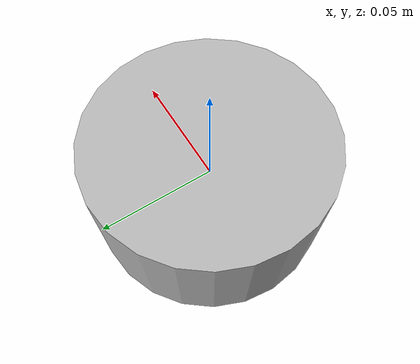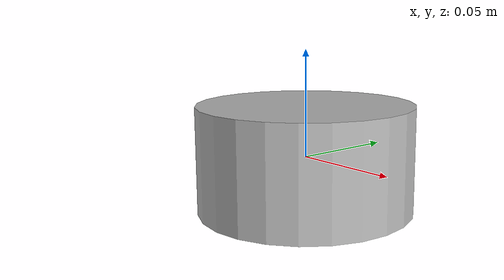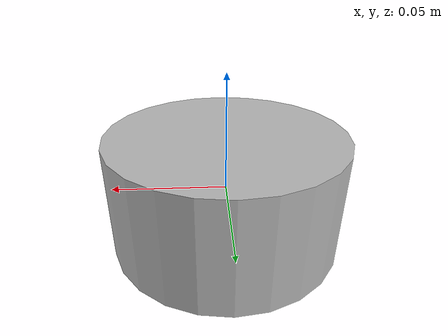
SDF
<?xml version="1.0" ?>
<sdf version="1.5">
  <model name="VLP16_lidar">
    <pose>0.0 0.0 0.0 0.0 0.0 0.0</pose>
    <link name="velodyne">
      <inertial>
        <pose>0 0 0 0 0 0</pose>
        <inertia>
          <ixx>0.001</ixx>
          <ixy>0.000</ixy>
          <ixz>0.000</ixz>
          <iyy>0.001</iyy>
          <iyz>0.000</iyz>
          <izz>0.001</izz>
        </inertia>
        <mass>0.114</mass>
      </inertial>

      <visual name="lidar_sensor_visual">
        <pose>0 0 0 0 0 0</pose>
        <geometry>
          <cylinder>
            <radius>0.0508</radius>
            <length>0.05</length>
          </cylinder>
        </geometry>
      </visual>

      <sensor name='velodyne-VLP16' type='ray'>
        <visualize>0</visualize>
        <update_rate>5</update_rate>
        <ray>
          <scan>
            <horizontal>
              <samples>350</samples>
              <resolution>1</resolution>
              <min_angle>-3.14159</min_angle>
              <max_angle>3.14159</max_angle>
            </horizontal>
            <vertical>
              <samples>16</samples>
              <resolution>1</resolution>
              <min_angle>-0.261799</min_angle>
              <max_angle>0.261799</max_angle>
            </vertical>
          </scan>
          <range>
            <min>0.3</min>
            <max>131</max>
            <resolution>0.001</resolution>
          </range>
          <noise>
            <type>gaussian</type>
            <mean>0</mean>
            <stddev>0</stddev>
          </noise>
        </ray>
        <plugin name='velodyne_points' filename='libgazebo_ros_velodyne_laser.so'>
          <topicName>/velodyne_points</topicName>
          <frameName>velodyne</frameName>
          <min_range>0.1</min_range>
          <max_range>130.0</max_range>
          <organize_cloud>true</organize_cloud>
          <gaussianNoise>0.008</gaussianNoise>
        </plugin>
        <pose>0 0 0 0 0 0</pose>
      </sensor>
    </link>

  </model>
</sdf>
